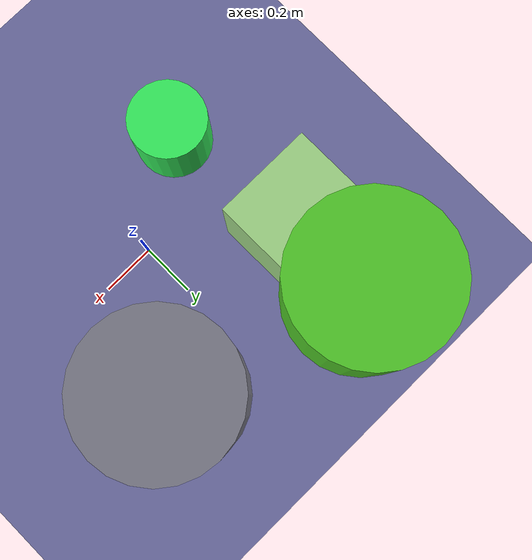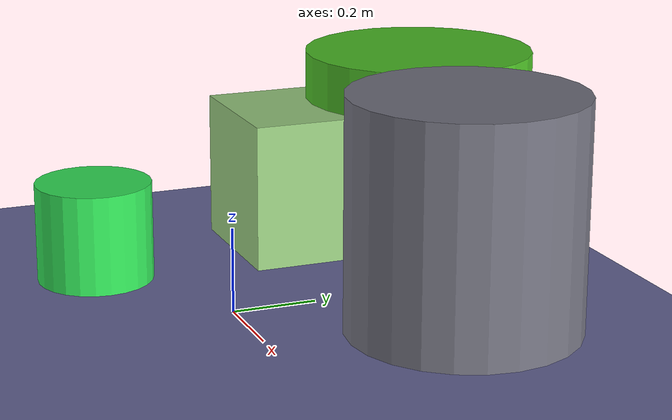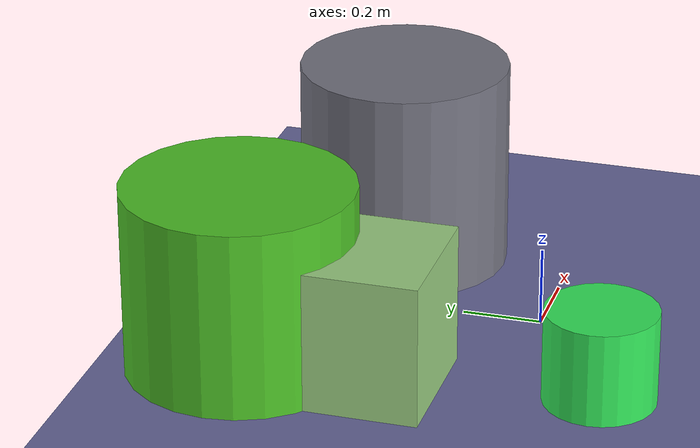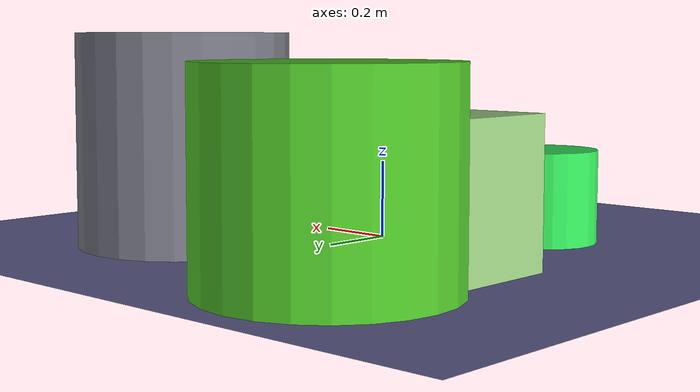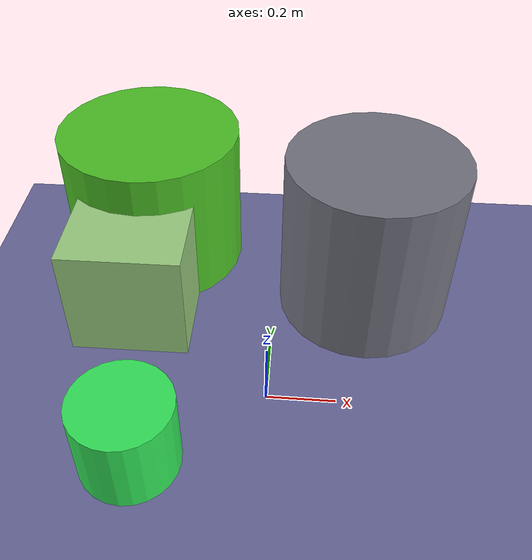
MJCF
<mujoco>
   <asset>
<texture type="skybox" builtin="gradient" rgb1="0.4 0.8 0.1" rgb2="1.0 0.4 0.6" width="256" height="256"/>
<texture name="gradient_0" builtin="gradient" rgb1="0.2 1.0 0.1" rgb2="0.2 0.8 0.6" width="200" height="200"/>
<texture name="gradient_1" builtin="gradient" rgb1="0.2 0.6 0.2" rgb2="0.4 0.9 0.1" width="200" height="200"/>
<texture name="flat_2" builtin="flat" rgb1="0.6 0.8 0.5" rgb2="0.6 0.8 0.5"  width="200" height="200"/>
<texture name="gradient_3" builtin="gradient" rgb1="0.3 0.8 0.8" rgb2="0.6 0.1 0.2" width="200" height="200"/><material name="gradient_0_mat" reflectance="0" texture="gradient_0" texuniform="true"/>
<material name="gradient_1_mat" reflectance="0" texture="gradient_1" texuniform="true"/>
<material name="flat_2_mat" reflectance="0" texture="flat_2" texuniform="true"/>
<material name="gradient_3_mat" reflectance="0" texture="gradient_3" texuniform="true"/>
   </asset>

   <worldbody>
      <light diffuse=".9 .9 .9" pos="0 0 3" dir="0 0 -1"/>
     <geom type="plane" size="1 1 0.1" rgba="0.4 0.4 0.6 1"/>
<geom type="cylinder" pos="-0.35 -0.23 0.12" size="0.14 0.12 0.12" material="gradient_0_mat" />
<geom type="cylinder" pos="-0.42 0.65 0.24" size="0.29 0.24 0.24" material="gradient_1_mat" />
<geom type="box" pos="-0.43 0.33 0.18" size="0.18 0.18 0.18" material="flat_2_mat" />
<geom type="cylinder" pos="0.29 0.44 0.27" size="0.27 0.27 0.27" material="gradient_3_mat" /><camera euler="60 0 180" fovy="60" name="camera_a" pos="0 -1.5 1"></camera>   </worldbody>
</mujoco>
